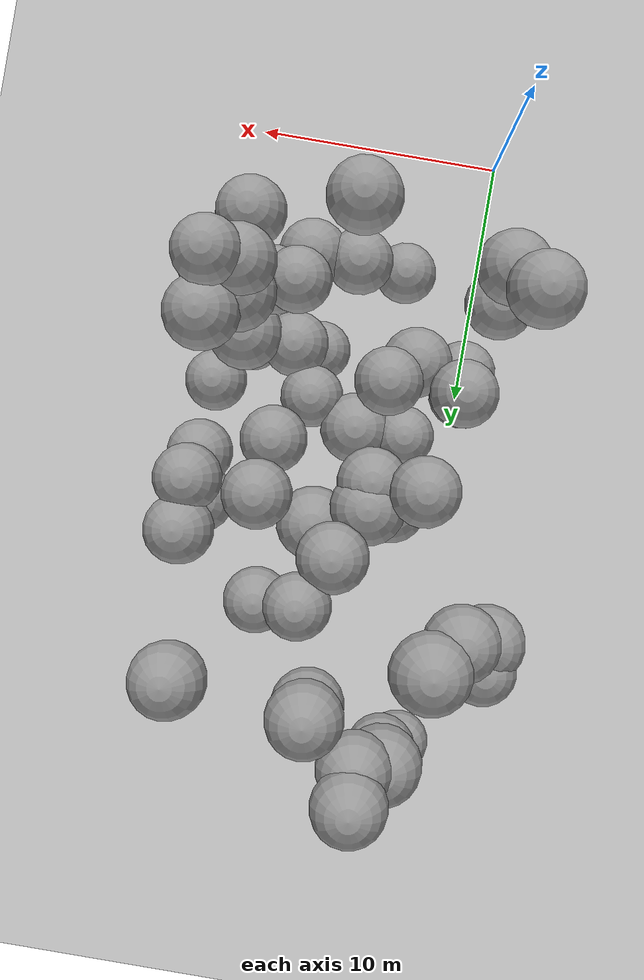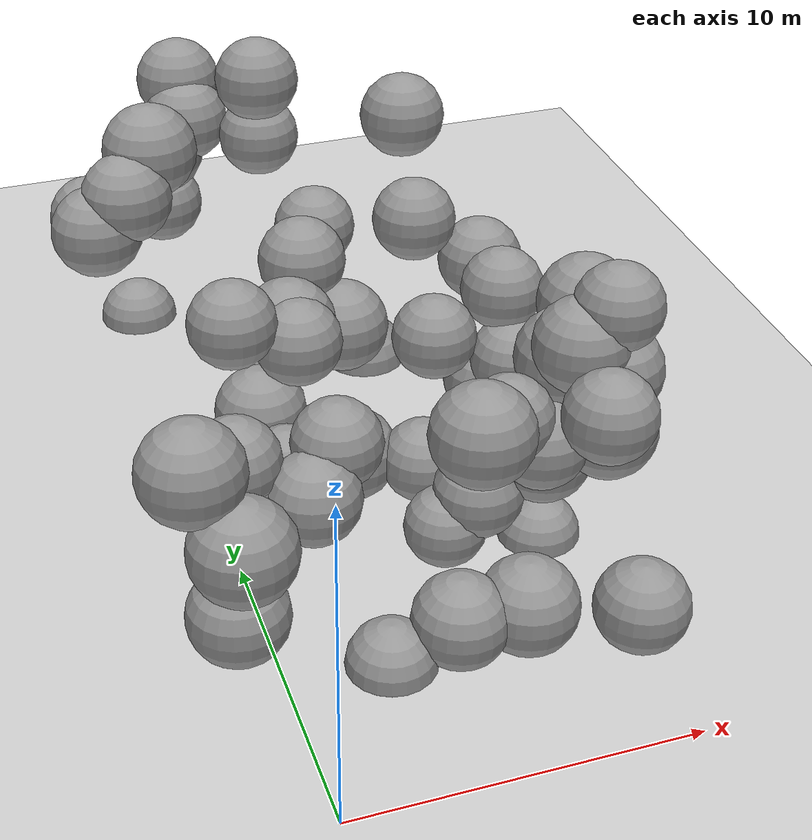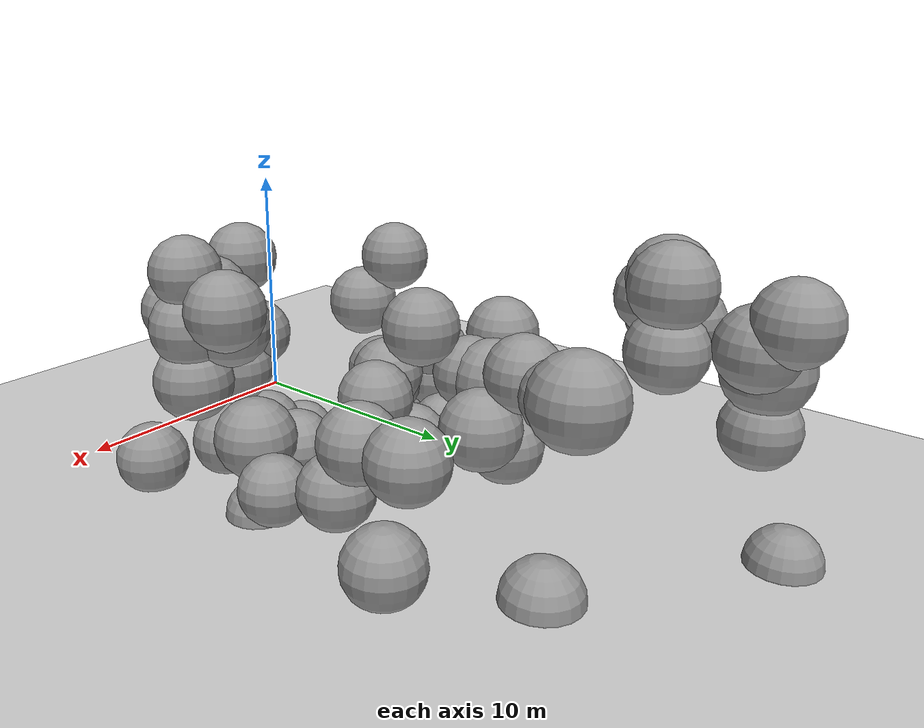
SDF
<sdf version="1.7">
 <world name="default">
  <model name="ground_plane">
   <static>1</static>
   <link name="link">
    <collision name="collision">
     <geometry><plane><normal>0 0 1</normal><size>100 100</size></plane></geometry>
     <surface>
      <contact><collide_bitmask>65535</collide_bitmask></contact>
      <friction><ode><mu>100</mu><mu2>50</mu2></ode></friction>
     </surface>
    </collision>
    <visual name="visual">
     <cast_shadows>0</cast_shadows>
     <geometry><plane><normal>0 0 1</normal><size>100 100</size></plane></geometry>
     <material>
      <script><uri>file://media/materials/scripts/gazebo.material</uri><name>Gazebo/Grey</name></script>
     </material>
    </visual>
   </link>
  </model>
  <model name="sphere_3">
   <static>1</static>
   <pose>10 11 2 0 0 0</pose>
   <link name="link">
    <inertial>
     <mass>868.9831357294986</mass>
     <inertia>
      <ixx>565.3965647869163</ixx>
      <iyy>565.3965647869163</iyy>
      <izz>565.3965647869163</izz>
      <ixy>0</ixy>
      <ixz>0</ixz>
      <iyz>0</iyz>
     </inertia>
    </inertial>
    <collision name="collision">
     <geometry><sphere><radius>1.275383849102163</radius></sphere></geometry>
    </collision>
    <visual name="visual">
     <geometry><sphere><radius>1.275383849102163</radius></sphere></geometry>
     <material>
      <script><uri>file://media/materials/scripts/gazebo.material</uri><name>Gazebo/Grey</name></script>
     </material>
    </visual>
   </link>
  </model>
  <model name="sphere_7">
   <static>1</static>
   <pose>3 5 0 0 0 0</pose>
   <link name="link">
    <inertial>
     <mass>956.1983310842588</mass>
     <inertia>
      <ixx>663.102839138089</ixx>
      <iyy>663.102839138089</iyy>
      <izz>663.102839138089</izz>
      <ixy>0</ixy>
      <ixz>0</ixz>
      <iyz>0</iyz>
     </inertia>
    </inertial>
    <collision name="collision">
     <geometry><sphere><radius>1.3166988533295256</radius></sphere></geometry>
    </collision>
    <visual name="visual">
     <geometry><sphere><radius>1.3166988533295256</radius></sphere></geometry>
     <material>
      <script><uri>file://media/materials/scripts/gazebo.material</uri><name>Gazebo/Grey</name></script>
     </material>
    </visual>
   </link>
  </model>
  <model name="sphere_9">
   <static>1</static>
   <pose>3 10 4 0 0 0</pose>
   <link name="link">
    <inertial>
     <mass>1079.731441712118</mass>
     <inertia>
      <ixx>811.9460351600522</ixx>
      <iyy>811.9460351600522</iyy>
      <izz>811.9460351600522</izz>
      <ixy>0</ixy>
      <ixz>0</ixz>
      <iyz>0</iyz>
     </inertia>
    </inertial>
    <collision name="collision">
     <geometry><sphere><radius>1.3711207804046117</radius></sphere></geometry>
    </collision>
    <visual name="visual">
     <geometry><sphere><radius>1.3711207804046117</radius></sphere></geometry>
     <material>
      <script><uri>file://media/materials/scripts/gazebo.material</uri><name>Gazebo/Grey</name></script>
     </material>
    </visual>
   </link>
  </model>
  <model name="sphere_11">
   <static>1</static>
   <pose>1 24 5 0 0 0</pose>
   <link name="link">
    <inertial>
     <mass>1003.4708876810511</mass>
     <inertia>
      <ixx>718.6358535089698</ixx>
      <iyy>718.6358535089698</iyy>
      <izz>718.6358535089698</izz>
      <ixy>0</ixy>
      <ixz>0</ixz>
      <iyz>0</iyz>
     </inertia>
    </inertial>
    <collision name="collision">
     <geometry><sphere><radius>1.3380491178231635</radius></sphere></geometry>
    </collision>
    <visual name="visual">
     <geometry><sphere><radius>1.3380491178231635</radius></sphere></geometry>
     <material>
      <script><uri>file://media/materials/scripts/gazebo.material</uri><name>Gazebo/Grey</name></script>
     </material>
    </visual>
   </link>
  </model>
  <model name="sphere_15">
   <static>1</static>
   <pose>7 13 5 0 0 0</pose>
   <link name="link">
    <inertial>
     <mass>923.8683063553028</mass>
     <inertia>
      <ixx>626.1586238649431</ixx>
      <iyy>626.1586238649431</iyy>
      <izz>626.1586238649431</izz>
      <ixy>0</ixy>
      <ixz>0</ixz>
      <iyz>0</iyz>
     </inertia>
    </inertial>
    <collision name="collision">
     <geometry><sphere><radius>1.3016887551544614</radius></sphere></geometry>
    </collision>
    <visual name="visual">
     <geometry><sphere><radius>1.3016887551544614</radius></sphere></geometry>
     <material>
      <script><uri>file://media/materials/scripts/gazebo.material</uri><name>Gazebo/Grey</name></script>
     </material>
    </visual>
   </link>
  </model>
  <model name="sphere_22">
   <static>1</static>
   <pose>5 19 6 0 0 0</pose>
   <link name="link">
    <inertial>
     <mass>912.9290711376584</mass>
     <inertia>
      <ixx>613.8505461930362</ixx>
      <iyy>613.8505461930362</iyy>
      <izz>613.8505461930362</izz>
      <ixy>0</ixy>
      <ixz>0</ixz>
      <iyz>0</iyz>
     </inertia>
    </inertial>
    <collision name="collision">
     <geometry><sphere><radius>1.2965307134144402</radius></sphere></geometry>
    </collision>
    <visual name="visual">
     <geometry><sphere><radius>1.2965307134144402</radius></sphere></geometry>
     <material>
      <script><uri>file://media/materials/scripts/gazebo.material</uri><name>Gazebo/Grey</name></script>
     </material>
    </visual>
   </link>
  </model>
  <model name="sphere_23">
   <static>1</static>
   <pose>-2 20 7 0 0 0</pose>
   <link name="link">
    <inertial>
     <mass>898.4752685543261</mass>
     <inertia>
      <ixx>597.7383638554867</ixx>
      <iyy>597.7383638554867</iyy>
      <izz>597.7383638554867</izz>
      <ixy>0</ixy>
      <ixz>0</ixz>
      <iyz>0</iyz>
     </inertia>
    </inertial>
    <collision name="collision">
     <geometry><sphere><radius>1.2896519108773912</radius></sphere></geometry>
    </collision>
    <visual name="visual">
     <geometry><sphere><radius>1.2896519108773912</radius></sphere></geometry>
     <material>
      <script><uri>file://media/materials/scripts/gazebo.material</uri><name>Gazebo/Grey</name></script>
     </material>
    </visual>
   </link>
  </model>
  <model name="sphere_27">
   <static>1</static>
   <pose>3 14 5 0 0 0</pose>
   <link name="link">
    <inertial>
     <mass>1061.8361056163462</mass>
     <inertia>
      <ixx>789.6416841092197</ixx>
      <iyy>789.6416841092197</iyy>
      <izz>789.6416841092197</izz>
      <ixy>0</ixy>
      <ixz>0</ixz>
      <iyz>0</iyz>
     </inertia>
    </inertial>
    <collision name="collision">
     <geometry><sphere><radius>1.3635036130666054</radius></sphere></geometry>
    </collision>
    <visual name="visual">
     <geometry><sphere><radius>1.3635036130666054</radius></sphere></geometry>
     <material>
      <script><uri>file://media/materials/scripts/gazebo.material</uri><name>Gazebo/Grey</name></script>
     </material>
    </visual>
   </link>
  </model>
  <model name="sphere_31">
   <static>1</static>
   <pose>10 14 3 0 0 0</pose>
   <link name="link">
    <inertial>
     <mass>974.4408386224361</mass>
     <inertia>
      <ixx>684.3212820842285</ixx>
      <iyy>684.3212820842285</iyy>
      <izz>684.3212820842285</izz>
      <ixy>0</ixy>
      <ixz>0</ixz>
      <iyz>0</iyz>
     </inertia>
    </inertial>
    <collision name="collision">
     <geometry><sphere><radius>1.3250195593667726</radius></sphere></geometry>
    </collision>
    <visual name="visual">
     <geometry><sphere><radius>1.3250195593667726</radius></sphere></geometry>
     <material>
      <script><uri>file://media/materials/scripts/gazebo.material</uri><name>Gazebo/Grey</name></script>
     </material>
    </visual>
   </link>
  </model>
  <model name="sphere_36">
   <static>1</static>
   <pose>4 22 10 0 0 0</pose>
   <link name="link">
    <inertial>
     <mass>1033.9862029616484</mass>
     <inertia>
      <ixx>755.4263999389774</ixx>
      <iyy>755.4263999389774</iyy>
      <izz>755.4263999389774</izz>
      <ixy>0</ixy>
      <ixz>0</ixz>
      <iyz>0</iyz>
     </inertia>
    </inertial>
    <collision name="collision">
     <geometry><sphere><radius>1.35147716305186</radius></sphere></geometry>
    </collision>
    <visual name="visual">
     <geometry><sphere><radius>1.35147716305186</radius></sphere></geometry>
     <material>
      <script><uri>file://media/materials/scripts/gazebo.material</uri><name>Gazebo/Grey</name></script>
     </material>
    </visual>
   </link>
  </model>
  <model name="sphere_48">
   <static>1</static>
   <pose>9 7 8 0 0 0</pose>
   <link name="link">
    <inertial>
     <mass>1090.026464649324</mass>
     <inertia>
      <ixx>824.8899052971848</ixx>
      <iyy>824.8899052971848</iyy>
      <izz>824.8899052971848</izz>
      <ixy>0</ixy>
      <ixz>0</ixz>
      <iyz>0</iyz>
     </inertia>
    </inertial>
    <collision name="collision">
     <geometry><sphere><radius>1.3754647903954558</radius></sphere></geometry>
    </collision>
    <visual name="visual">
     <geometry><sphere><radius>1.3754647903954558</radius></sphere></geometry>
     <material>
      <script><uri>file://media/materials/scripts/gazebo.material</uri><name>Gazebo/Grey</name></script>
     </material>
    </visual>
   </link>
  </model>
  <model name="sphere_52">
   <static>1</static>
   <pose>-1 5 5 0 0 0</pose>
   <link name="link">
    <inertial>
     <mass>1400.1566593632929</mass>
     <inertia>
      <ixx>1252.0700744228905</ixx>
      <iyy>1252.0700744228905</iyy>
      <izz>1252.0700744228905</izz>
      <ixy>0</ixy>
      <ixz>0</ixz>
      <iyz>0</iyz>
     </inertia>
    </inertial>
    <collision name="collision">
     <geometry><sphere><radius>1.49518870287036</radius></sphere></geometry>
    </collision>
    <visual name="visual">
     <geometry><sphere><radius>1.49518870287036</radius></sphere></geometry>
     <material>
      <script><uri>file://media/materials/scripts/gazebo.material</uri><name>Gazebo/Grey</name></script>
     </material>
    </visual>
   </link>
  </model>
  <model name="sphere_55">
   <static>1</static>
   <pose>10 15 5 0 0 0</pose>
   <link name="link">
    <inertial>
     <mass>999.6622390472045</mass>
     <inertia>
      <ixx>714.0956666187225</ixx>
      <iyy>714.0956666187225</iyy>
      <izz>714.0956666187225</izz>
      <ixy>0</ixy>
      <ixz>0</ixz>
      <iyz>0</iyz>
     </inertia>
    </inertial>
    <collision name="collision">
     <geometry><sphere><radius>1.3363541276031432</radius></sphere></geometry>
    </collision>
    <visual name="visual">
     <geometry><sphere><radius>1.3363541276031432</radius></sphere></geometry>
     <material>
      <script><uri>file://media/materials/scripts/gazebo.material</uri><name>Gazebo/Grey</name></script>
     </material>
    </visual>
   </link>
  </model>
  <model name="sphere_61">
   <static>1</static>
   <pose>9 8 7 0 0 0</pose>
   <link name="link">
    <inertial>
     <mass>1253.7664434985502</mass>
     <inertia>
      <ixx>1041.5864504863252</ixx>
      <iyy>1041.5864504863252</iyy>
      <izz>1041.5864504863252</izz>
      <ixy>0</ixy>
      <ixz>0</ixz>
      <iyz>0</iyz>
     </inertia>
    </inertial>
    <collision name="collision">
     <geometry><sphere><radius>1.4411505247789265</radius></sphere></geometry>
    </collision>
    <visual name="visual">
     <geometry><sphere><radius>1.4411505247789265</radius></sphere></geometry>
     <material>
      <script><uri>file://media/materials/scripts/gazebo.material</uri><name>Gazebo/Grey</name></script>
     </material>
    </visual>
   </link>
  </model>
  <model name="sphere_66">
   <static>1</static>
   <pose>0 25 0 0 0 0</pose>
   <link name="link">
    <inertial>
     <mass>1004.6235518711335</mass>
     <inertia>
      <ixx>720.012181331216</ixx>
      <iyy>720.012181331216</iyy>
      <izz>720.012181331216</izz>
      <ixy>0</ixy>
      <ixz>0</ixz>
      <iyz>0</iyz>
     </inertia>
    </inertial>
    <collision name="collision">
     <geometry><sphere><radius>1.3385612506463627</radius></sphere></geometry>
    </collision>
    <visual name="visual">
     <geometry><sphere><radius>1.3385612506463627</radius></sphere></geometry>
     <material>
      <script><uri>file://media/materials/scripts/gazebo.material</uri><name>Gazebo/Grey</name></script>
     </material>
    </visual>
   </link>
  </model>
  <model name="sphere_79">
   <static>1</static>
   <pose>2 24 8 0 0 0</pose>
   <link name="link">
    <inertial>
     <mass>1120.86506992665</mass>
     <inertia>
      <ixx>864.1513455822745</ixx>
      <iyy>864.1513455822745</iyy>
      <izz>864.1513455822745</izz>
      <ixy>0</ixy>
      <ixz>0</ixz>
      <iyz>0</iyz>
     </inertia>
    </inertial>
    <collision name="collision">
     <geometry><sphere><radius>1.3883157223792904</radius></sphere></geometry>
    </collision>
    <visual name="visual">
     <geometry><sphere><radius>1.3883157223792904</radius></sphere></geometry>
     <material>
      <script><uri>file://media/materials/scripts/gazebo.material</uri><name>Gazebo/Grey</name></script>
     </material>
    </visual>
   </link>
  </model>
  <model name="sphere_98">
   <static>1</static>
   <pose>5 5 1 0 0 0</pose>
   <link name="link">
    <inertial>
     <mass>1205.5672126514476</mass>
     <inertia>
      <ixx>975.708223490467</ixx>
      <iyy>975.708223490467</iyy>
      <izz>975.708223490467</izz>
      <ixy>0</ixy>
      <ixz>0</ixz>
      <iyz>0</iyz>
     </inertia>
    </inertial>
    <collision name="collision">
     <geometry><sphere><radius>1.422441036568479</radius></sphere></geometry>
    </collision>
    <visual name="visual">
     <geometry><sphere><radius>1.422441036568479</radius></sphere></geometry>
     <material>
      <script><uri>file://media/materials/scripts/gazebo.material</uri><name>Gazebo/Grey</name></script>
     </material>
    </visual>
   </link>
  </model>
  <model name="sphere_100">
   <static>1</static>
   <pose>10 7 5 0 0 0</pose>
   <link name="link">
    <inertial>
     <mass>1256.026952704467</mass>
     <inertia>
      <ixx>1044.7182545703663</ixx>
      <iyy>1044.7182545703663</iyy>
      <izz>1044.7182545703663</izz>
      <ixy>0</ixy>
      <ixz>0</ixz>
      <iyz>0</iyz>
     </inertia>
    </inertial>
    <collision name="collision">
     <geometry><sphere><radius>1.4420161240919158</radius></sphere></geometry>
    </collision>
    <visual name="visual">
     <geometry><sphere><radius>1.4420161240919158</radius></sphere></geometry>
     <material>
      <script><uri>file://media/materials/scripts/gazebo.material</uri><name>Gazebo/Grey</name></script>
     </material>
    </visual>
   </link>
  </model>
  <model name="sphere_104">
   <static>1</static>
   <pose>0 10 3 0 0 0</pose>
   <link name="link">
    <inertial>
     <mass>1038.575596995217</mass>
     <inertia>
      <ixx>761.0229870116839</ixx>
      <iyy>761.0229870116839</iyy>
      <izz>761.0229870116839</izz>
      <ixy>0</ixy>
      <ixz>0</ixz>
      <iyz>0</iyz>
     </inertia>
    </inertial>
    <collision name="collision">
     <geometry><sphere><radius>1.3534737426124328</radius></sphere></geometry>
    </collision>
    <visual name="visual">
     <geometry><sphere><radius>1.3534737426124328</radius></sphere></geometry>
     <material>
      <script><uri>file://media/materials/scripts/gazebo.material</uri><name>Gazebo/Grey</name></script>
     </material>
    </visual>
   </link>
  </model>
  <model name="sphere_109">
   <static>1</static>
   <pose>6 11 2 0 0 0</pose>
   <link name="link">
    <inertial>
     <mass>911.4426418462117</mass>
     <inertia>
      <ixx>612.1856667084536</ixx>
      <iyy>612.1856667084536</iyy>
      <izz>612.1856667084536</izz>
      <ixy>0</ixy>
      <ixz>0</ixz>
      <iyz>0</iyz>
     </inertia>
    </inertial>
    <collision name="collision">
     <geometry><sphere><radius>1.2958266615908984</radius></sphere></geometry>
    </collision>
    <visual name="visual">
     <geometry><sphere><radius>1.2958266615908984</radius></sphere></geometry>
     <material>
      <script><uri>file://media/materials/scripts/gazebo.material</uri><name>Gazebo/Grey</name></script>
     </material>
    </visual>
   </link>
  </model>
  <model name="sphere_119">
   <static>1</static>
   <pose>5 16 4 0 0 0</pose>
   <link name="link">
    <inertial>
     <mass>1317.519569659245</mass>
     <inertia>
      <ixx>1131.3475558301495</ixx>
      <iyy>1131.3475558301495</iyy>
      <izz>1131.3475558301495</izz>
      <ixy>0</ixy>
      <ixz>0</ixz>
      <iyz>0</iyz>
     </inertia>
    </inertial>
    <collision name="collision">
     <geometry><sphere><radius>1.4651749618407661</radius></sphere></geometry>
    </collision>
    <visual name="visual">
     <geometry><sphere><radius>1.4651749618407661</radius></sphere></geometry>
     <material>
      <script><uri>file://media/materials/scripts/gazebo.material</uri><name>Gazebo/Grey</name></script>
     </material>
    </visual>
   </link>
  </model>
  <model name="sphere_132">
   <static>1</static>
   <pose>4 12 2 0 0 0</pose>
   <link name="link">
    <inertial>
     <mass>1307.8214372345162</mass>
     <inertia>
      <ixx>1117.5020749934624</ixx>
      <iyy>1117.5020749934624</iyy>
      <izz>1117.5020749934624</izz>
      <ixy>0</ixy>
      <ixz>0</ixz>
      <iyz>0</iyz>
     </inertia>
    </inertial>
    <collision name="collision">
     <geometry><sphere><radius>1.4615711016708017</radius></sphere></geometry>
    </collision>
    <visual name="visual">
     <geometry><sphere><radius>1.4615711016708017</radius></sphere></geometry>
     <material>
      <script><uri>file://media/materials/scripts/gazebo.material</uri><name>Gazebo/Grey</name></script>
     </material>
    </visual>
   </link>
  </model>
  <model name="sphere_137">
   <static>1</static>
   <pose>10 7 9 0 0 0</pose>
   <link name="link">
    <inertial>
     <mass>848.7662236135884</mass>
     <inertia>
      <ixx>543.6437499617632</ixx>
      <iyy>543.6437499617632</iyy>
      <izz>543.6437499617632</izz>
      <ixy>0</ixy>
      <ixz>0</ixz>
      <iyz>0</iyz>
     </inertia>
    </inertial>
    <collision name="collision">
     <geometry><sphere><radius>1.2654155290516513</radius></sphere></geometry>
    </collision>
    <visual name="visual">
     <geometry><sphere><radius>1.2654155290516513</radius></sphere></geometry>
     <material>
      <script><uri>file://media/materials/scripts/gazebo.material</uri><name>Gazebo/Grey</name></script>
     </material>
    </visual>
   </link>
  </model>
  <model name="sphere_148">
   <static>1</static>
   <pose>3 15 5 0 0 0</pose>
   <link name="link">
    <inertial>
     <mass>1342.6296108974332</mass>
     <inertia>
      <ixx>1167.5118221395412</ixx>
      <iyy>1167.5118221395412</iyy>
      <izz>1167.5118221395412</izz>
      <ixy>0</ixy>
      <ixz>0</ixz>
      <iyz>0</iyz>
     </inertia>
    </inertial>
    <collision name="collision">
     <geometry><sphere><radius>1.4744244947759864</radius></sphere></geometry>
    </collision>
    <visual name="visual">
     <geometry><sphere><radius>1.4744244947759864</radius></sphere></geometry>
     <material>
      <script><uri>file://media/materials/scripts/gazebo.material</uri><name>Gazebo/Grey</name></script>
     </material>
    </visual>
   </link>
  </model>
  <model name="sphere_173">
   <static>1</static>
   <pose>0 20 9 0 0 0</pose>
   <link name="link">
    <inertial>
     <mass>1375.5026435039772</mass>
     <inertia>
      <ixx>1215.5419944643766</ixx>
      <iyy>1215.5419944643766</iyy>
      <izz>1215.5419944643766</izz>
      <ixy>0</ixy>
      <ixz>0</ixz>
      <iyz>0</iyz>
     </inertia>
    </inertial>
    <collision name="collision">
     <geometry><sphere><radius>1.486360903581729</radius></sphere></geometry>
    </collision>
    <visual name="visual">
     <geometry><sphere><radius>1.486360903581729</radius></sphere></geometry>
     <material>
      <script><uri>file://media/materials/scripts/gazebo.material</uri><name>Gazebo/Grey</name></script>
     </material>
    </visual>
   </link>
  </model>
  <model name="sphere_178">
   <static>1</static>
   <pose>9 9 3 0 0 0</pose>
   <link name="link">
    <inertial>
     <mass>1405.8536290254692</mass>
     <inertia>
      <ixx>1260.5723077163818</ixx>
      <iyy>1260.5723077163818</iyy>
      <izz>1260.5723077163818</izz>
      <ixy>0</ixy>
      <ixz>0</ixz>
      <iyz>0</iyz>
     </inertia>
    </inertial>
    <collision name="collision">
     <geometry><sphere><radius>1.497213837677362</radius></sphere></geometry>
    </collision>
    <visual name="visual">
     <geometry><sphere><radius>1.497213837677362</radius></sphere></geometry>
     <material>
      <script><uri>file://media/materials/scripts/gazebo.material</uri><name>Gazebo/Grey</name></script>
     </material>
    </visual>
   </link>
  </model>
  <model name="sphere_180">
   <static>1</static>
   <pose>7 7 6 0 0 0</pose>
   <link name="link">
    <inertial>
     <mass>866.0142977613713</mass>
     <inertia>
      <ixx>562.1808167697997</ixx>
      <iyy>562.1808167697997</iyy>
      <izz>562.1808167697997</izz>
      <ixy>0</ixy>
      <ixz>0</ixz>
      <iyz>0</iyz>
     </inertia>
    </inertial>
    <collision name="collision">
     <geometry><sphere><radius>1.2739297632602826</radius></sphere></geometry>
    </collision>
    <visual name="visual">
     <geometry><sphere><radius>1.2739297632602826</radius></sphere></geometry>
     <material>
      <script><uri>file://media/materials/scripts/gazebo.material</uri><name>Gazebo/Grey</name></script>
     </material>
    </visual>
   </link>
  </model>
  <model name="sphere_186">
   <static>1</static>
   <pose>1 24 7 0 0 0</pose>
   <link name="link">
    <inertial>
     <mass>1405.9323790197084</mass>
     <inertia>
      <ixx>1260.6899964921702</ixx>
      <iyy>1260.6899964921702</iyy>
      <izz>1260.6899964921702</izz>
      <ixy>0</ixy>
      <ixz>0</ixz>
      <iyz>0</iyz>
     </inertia>
    </inertial>
    <collision name="collision">
     <geometry><sphere><radius>1.4972417930247282</radius></sphere></geometry>
    </collision>
    <visual name="visual">
     <geometry><sphere><radius>1.4972417930247282</radius></sphere></geometry>
     <material>
      <script><uri>file://media/materials/scripts/gazebo.material</uri><name>Gazebo/Grey</name></script>
     </material>
    </visual>
   </link>
  </model>
  <model name="sphere_195">
   <static>1</static>
   <pose>2 12 2 0 0 0</pose>
   <link name="link">
    <inertial>
     <mass>825.8988450789748</mass>
     <inertia>
      <ixx>519.4523114596384</ixx>
      <iyy>519.4523114596384</iyy>
      <izz>519.4523114596384</izz>
      <ixy>0</ixy>
      <ixz>0</ixz>
      <iyz>0</iyz>
     </inertia>
    </inertial>
    <collision name="collision">
     <geometry><sphere><radius>1.2539476806649275</radius></sphere></geometry>
    </collision>
    <visual name="visual">
     <geometry><sphere><radius>1.2539476806649275</radius></sphere></geometry>
     <material>
      <script><uri>file://media/materials/scripts/gazebo.material</uri><name>Gazebo/Grey</name></script>
     </material>
    </visual>
   </link>
  </model>
  <model name="sphere_198">
   <static>1</static>
   <pose>10 7 7 0 0 0</pose>
   <link name="link">
    <inertial>
     <mass>1197.3916043797988</mass>
     <inertia>
      <ixx>964.7051559795009</ixx>
      <iyy>964.7051559795009</iyy>
      <izz>964.7051559795009</izz>
      <ixy>0</ixy>
      <ixz>0</ixz>
      <iyz>0</iyz>
     </inertia>
    </inertial>
    <collision name="collision">
     <geometry><sphere><radius>1.4192182912008109</radius></sphere></geometry>
    </collision>
    <visual name="visual">
     <geometry><sphere><radius>1.4192182912008109</radius></sphere></geometry>
     <material>
      <script><uri>file://media/materials/scripts/gazebo.material</uri><name>Gazebo/Grey</name></script>
     </material>
    </visual>
   </link>
  </model>
  <model name="sphere_199">
   <static>1</static>
   <pose>7 5 1 0 0 0</pose>
   <link name="link">
    <inertial>
     <mass>1351.3556246419573</mass>
     <inertia>
      <ixx>1180.185681078384</ixx>
      <iyy>1180.185681078384</iyy>
      <izz>1180.185681078384</izz>
      <ixy>0</ixy>
      <ixz>0</ixz>
      <iyz>0</iyz>
     </inertia>
    </inertial>
    <collision name="collision">
     <geometry><sphere><radius>1.4776117912941387</radius></sphere></geometry>
    </collision>
    <visual name="visual">
     <geometry><sphere><radius>1.4776117912941387</radius></sphere></geometry>
     <material>
      <script><uri>file://media/materials/scripts/gazebo.material</uri><name>Gazebo/Grey</name></script>
     </material>
    </visual>
   </link>
  </model>
  <model name="sphere_213">
   <static>1</static>
   <pose>9 5 7 0 0 0</pose>
   <link name="link">
    <inertial>
     <mass>951.8460163128973</mass>
     <inertia>
      <ixx>658.0800818310026</ixx>
      <iyy>658.0800818310026</iyy>
      <izz>658.0800818310026</izz>
      <ixy>0</ixy>
      <ixz>0</ixz>
      <iyz>0</iyz>
     </inertia>
    </inertial>
    <collision name="collision">
     <geometry><sphere><radius>1.3146980812790474</radius></sphere></geometry>
    </collision>
    <visual name="visual">
     <geometry><sphere><radius>1.3146980812790474</radius></sphere></geometry>
     <material>
      <script><uri>file://media/materials/scripts/gazebo.material</uri><name>Gazebo/Grey</name></script>
     </material>
    </visual>
   </link>
  </model>
  <model name="sphere_215">
   <static>1</static>
   <pose>10 9 8 0 0 0</pose>
   <link name="link">
    <inertial>
     <mass>1154.65325641477</mass>
     <inertia>
      <ixx>908.0021837218947</ixx>
      <iyy>908.0021837218947</iyy>
      <izz>908.0021837218947</izz>
      <ixy>0</ixy>
      <ixz>0</ixz>
      <iyz>0</iyz>
     </inertia>
    </inertial>
    <collision name="collision">
     <geometry><sphere><radius>1.4021279882812752</radius></sphere></geometry>
    </collision>
    <visual name="visual">
     <geometry><sphere><radius>1.4021279882812752</radius></sphere></geometry>
     <material>
      <script><uri>file://media/materials/scripts/gazebo.material</uri><name>Gazebo/Grey</name></script>
     </material>
    </visual>
   </link>
  </model>
  <model name="sphere_216">
   <static>1</static>
   <pose>2 25 9 0 0 0</pose>
   <link name="link">
    <inertial>
     <mass>1097.5633567646264</mass>
     <inertia>
      <ixx>834.4178459073711</ixx>
      <iyy>834.4178459073711</iyy>
      <izz>834.4178459073711</izz>
      <ixy>0</ixy>
      <ixz>0</ixz>
      <iyz>0</iyz>
     </inertia>
    </inertial>
    <collision name="collision">
     <geometry><sphere><radius>1.3786276884687285</radius></sphere></geometry>
    </collision>
    <visual name="visual">
     <geometry><sphere><radius>1.3786276884687285</radius></sphere></geometry>
     <material>
      <script><uri>file://media/materials/scripts/gazebo.material</uri><name>Gazebo/Grey</name></script>
     </material>
    </visual>
   </link>
  </model>
  <model name="sphere_221">
   <static>1</static>
   <pose>-2 6 7 0 0 0</pose>
   <link name="link">
    <inertial>
     <mass>1323.3413042762772</mass>
     <inertia>
      <ixx>1139.6916464481644</ixx>
      <iyy>1139.6916464481644</iyy>
      <izz>1139.6916464481644</izz>
      <ixy>0</ixy>
      <ixz>0</ixz>
      <iyz>0</iyz>
     </inertia>
    </inertial>
    <collision name="collision">
     <geometry><sphere><radius>1.4673298512477677</radius></sphere></geometry>
    </collision>
    <visual name="visual">
     <geometry><sphere><radius>1.4673298512477677</radius></sphere></geometry>
     <material>
      <script><uri>file://media/materials/scripts/gazebo.material</uri><name>Gazebo/Grey</name></script>
     </material>
    </visual>
   </link>
  </model>
  <model name="sphere_223">
   <static>1</static>
   <pose>9 22 8 0 0 0</pose>
   <link name="link">
    <inertial>
     <mass>1201.93772480697</mass>
     <inertia>
      <ixx>970.8173498987057</ixx>
      <iyy>970.8173498987057</iyy>
      <izz>970.8173498987057</izz>
      <ixy>0</ixy>
      <ixz>0</ixz>
      <iyz>0</iyz>
     </inertia>
    </inertial>
    <collision name="collision">
     <geometry><sphere><radius>1.4210121318269913</radius></sphere></geometry>
    </collision>
    <visual name="visual">
     <geometry><sphere><radius>1.4210121318269913</radius></sphere></geometry>
     <material>
      <script><uri>file://media/materials/scripts/gazebo.material</uri><name>Gazebo/Grey</name></script>
     </material>
    </visual>
   </link>
  </model>
  <model name="sphere_229">
   <static>1</static>
   <pose>-1 19 8 0 0 0</pose>
   <link name="link">
    <inertial>
     <mass>1189.8311447486653</mass>
     <inertia>
      <ixx>954.5744509263963</ixx>
      <iyy>954.5744509263963</iyy>
      <izz>954.5744509263963</izz>
      <ixy>0</ixy>
      <ixz>0</ixz>
      <iyz>0</iyz>
     </inertia>
    </inertial>
    <collision name="collision">
     <geometry><sphere><radius>1.4162249498270199</radius></sphere></geometry>
    </collision>
    <visual name="visual">
     <geometry><sphere><radius>1.4162249498270199</radius></sphere></geometry>
     <material>
      <script><uri>file://media/materials/scripts/gazebo.material</uri><name>Gazebo/Grey</name></script>
     </material>
    </visual>
   </link>
  </model>
  <model name="sphere_247">
   <static>1</static>
   <pose>2 15 2 0 0 0</pose>
   <link name="link">
    <inertial>
     <mass>1304.7966690298572</mass>
     <inertia>
      <ixx>1113.1977435709655</ixx>
      <iyy>1113.1977435709655</iyy>
      <izz>1113.1977435709655</izz>
      <ixy>0</ixy>
      <ixz>0</ixz>
      <iyz>0</iyz>
     </inertia>
    </inertial>
    <collision name="collision">
     <geometry><sphere><radius>1.4604434435336882</radius></sphere></geometry>
    </collision>
    <visual name="visual">
     <geometry><sphere><radius>1.4604434435336882</radius></sphere></geometry>
     <material>
      <script><uri>file://media/materials/scripts/gazebo.material</uri><name>Gazebo/Grey</name></script>
     </material>
    </visual>
   </link>
  </model>
  <model name="sphere_252">
   <static>1</static>
   <pose>7 20 0 0 0 0</pose>
   <link name="link">
    <inertial>
     <mass>1269.7216929776823</mass>
     <inertia>
      <ixx>1063.7718270933347</ixx>
      <iyy>1063.7718270933347</iyy>
      <izz>1063.7718270933347</izz>
      <ixy>0</ixy>
      <ixz>0</ixz>
      <iyz>0</iyz>
     </inertia>
    </inertial>
    <collision name="collision">
     <geometry><sphere><radius>1.447238064978983</radius></sphere></geometry>
    </collision>
    <visual name="visual">
     <geometry><sphere><radius>1.447238064978983</radius></sphere></geometry>
     <material>
      <script><uri>file://media/materials/scripts/gazebo.material</uri><name>Gazebo/Grey</name></script>
     </material>
    </visual>
   </link>
  </model>
  <model name="sphere_255">
   <static>1</static>
   <pose>1 14 6 0 0 0</pose>
   <link name="link">
    <inertial>
     <mass>1073.9672098692874</mass>
     <inertia>
      <ixx>804.73450174692</ixx>
      <iyy>804.73450174692</iyy>
      <izz>804.73450174692</izz>
      <ixy>0</ixy>
      <ixz>0</ixz>
      <iyz>0</iyz>
     </inertia>
    </inertial>
    <collision name="collision">
     <geometry><sphere><radius>1.3686764798956739</radius></sphere></geometry>
    </collision>
    <visual name="visual">
     <geometry><sphere><radius>1.3686764798956739</radius></sphere></geometry>
     <material>
      <script><uri>file://media/materials/scripts/gazebo.material</uri><name>Gazebo/Grey</name></script>
     </material>
    </visual>
   </link>
  </model>
  <model name="sphere_258">
   <static>1</static>
   <pose>0 10 4 0 0 0</pose>
   <link name="link">
    <inertial>
     <mass>1087.3008092001307</mass>
     <inertia>
      <ixx>821.4549870117487</ixx>
      <iyy>821.4549870117487</iyy>
      <izz>821.4549870117487</izz>
      <ixy>0</ixy>
      <ixz>0</ixz>
      <iyz>0</iyz>
     </inertia>
    </inertial>
    <collision name="collision">
     <geometry><sphere><radius>1.3743173649431748</radius></sphere></geometry>
    </collision>
    <visual name="visual">
     <geometry><sphere><radius>1.3743173649431748</radius></sphere></geometry>
     <material>
      <script><uri>file://media/materials/scripts/gazebo.material</uri><name>Gazebo/Grey</name></script>
     </material>
    </visual>
   </link>
  </model>
  <model name="sphere_279">
   <static>1</static>
   <pose>4 22 8 0 0 0</pose>
   <link name="link">
    <inertial>
     <mass>931.5577424053383</mass>
     <inertia>
      <ixx>634.8686538567877</ixx>
      <iyy>634.8686538567877</iyy>
      <izz>634.8686538567877</izz>
      <ixy>0</ixy>
      <ixz>0</ixz>
      <iyz>0</iyz>
     </inertia>
    </inertial>
    <collision name="collision">
     <geometry><sphere><radius>1.3052901381561892</radius></sphere></geometry>
    </collision>
    <visual name="visual">
     <geometry><sphere><radius>1.3052901381561892</radius></sphere></geometry>
     <material>
      <script><uri>file://media/materials/scripts/gazebo.material</uri><name>Gazebo/Grey</name></script>
     </material>
    </visual>
   </link>
  </model>
  <model name="sphere_292">
   <static>1</static>
   <pose>4 17 6 0 0 0</pose>
   <link name="link">
    <inertial>
     <mass>1110.25647044321</mass>
     <inertia>
      <ixx>850.5629083242919</ixx>
      <iyy>850.5629083242919</iyy>
      <izz>850.5629083242919</izz>
      <ixy>0</ixy>
      <ixz>0</ixz>
      <iyz>0</iyz>
     </inertia>
    </inertial>
    <collision name="collision">
     <geometry><sphere><radius>1.3839218551975434</radius></sphere></geometry>
    </collision>
    <visual name="visual">
     <geometry><sphere><radius>1.3839218551975434</radius></sphere></geometry>
     <material>
      <script><uri>file://media/materials/scripts/gazebo.material</uri><name>Gazebo/Grey</name></script>
     </material>
    </visual>
   </link>
  </model>
  <model name="sphere_293">
   <static>1</static>
   <pose>10 7 9 0 0 0</pose>
   <link name="link">
    <inertial>
     <mass>845.8147604976706</mass>
     <inertia>
      <ixx>540.4966645134293</ixx>
      <iyy>540.4966645134293</iyy>
      <izz>540.4966645134293</izz>
      <ixy>0</ixy>
      <ixz>0</ixz>
      <iyz>0</iyz>
     </inertia>
    </inertial>
    <collision name="collision">
     <geometry><sphere><radius>1.263947058445678</radius></sphere></geometry>
    </collision>
    <visual name="visual">
     <geometry><sphere><radius>1.263947058445678</radius></sphere></geometry>
     <material>
      <script><uri>file://media/materials/scripts/gazebo.material</uri><name>Gazebo/Grey</name></script>
     </material>
    </visual>
   </link>
  </model>
  <model name="sphere_295">
   <static>1</static>
   <pose>6 9 1 0 0 0</pose>
   <link name="link">
    <inertial>
     <mass>822.262354179457</mass>
     <inertia>
      <ixx>515.6459336900652</ixx>
      <iyy>515.6459336900652</iyy>
      <izz>515.6459336900652</izz>
      <ixy>0</ixy>
      <ixz>0</ixz>
      <iyz>0</iyz>
     </inertia>
    </inertial>
    <collision name="collision">
     <geometry><sphere><radius>1.2521045661810155</radius></sphere></geometry>
    </collision>
    <visual name="visual">
     <geometry><sphere><radius>1.2521045661810155</radius></sphere></geometry>
     <material>
      <script><uri>file://media/materials/scripts/gazebo.material</uri><name>Gazebo/Grey</name></script>
     </material>
    </visual>
   </link>
  </model>
  <model name="sphere_296">
   <static>1</static>
   <pose>10 4 1 0 0 0</pose>
   <link name="link">
    <inertial>
     <mass>1136.4454503921866</mass>
     <inertia>
      <ixx>884.2639278636126</ixx>
      <iyy>884.2639278636126</iyy>
      <izz>884.2639278636126</izz>
      <ixy>0</ixy>
      <ixz>0</ixz>
      <iyz>0</iyz>
     </inertia>
    </inertial>
    <collision name="collision">
     <geometry><sphere><radius>1.394718821514574</radius></sphere></geometry>
    </collision>
    <visual name="visual">
     <geometry><sphere><radius>1.394718821514574</radius></sphere></geometry>
     <material>
      <script><uri>file://media/materials/scripts/gazebo.material</uri><name>Gazebo/Grey</name></script>
     </material>
    </visual>
   </link>
  </model>
  <model name="sphere_298">
   <static>1</static>
   <pose>8 7 5 0 0 0</pose>
   <link name="link">
    <inertial>
     <mass>1021.2791262258994</mass>
     <inertia>
      <ixx>740.0169676306326</ixx>
      <iyy>740.0169676306326</iyy>
      <izz>740.0169676306326</izz>
      <ixy>0</ixy>
      <ixz>0</ixz>
      <iyz>0</iyz>
     </inertia>
    </inertial>
    <collision name="collision">
     <geometry><sphere><radius>1.345918043650199</radius></sphere></geometry>
    </collision>
    <visual name="visual">
     <geometry><sphere><radius>1.345918043650199</radius></sphere></geometry>
     <material>
      <script><uri>file://media/materials/scripts/gazebo.material</uri><name>Gazebo/Grey</name></script>
     </material>
    </visual>
   </link>
  </model>
  <model name="sphere_301">
   <static>1</static>
   <pose>10 16 1 0 0 0</pose>
   <link name="link">
    <inertial>
     <mass>1298.9577731885702</mass>
     <inertia>
      <ixx>1104.9076327904704</ixx>
      <iyy>1104.9076327904704</iyy>
      <izz>1104.9076327904704</izz>
      <ixy>0</ixy>
      <ixz>0</ixz>
      <iyz>0</iyz>
     </inertia>
    </inertial>
    <collision name="collision">
     <geometry><sphere><radius>1.458261716954568</radius></sphere></geometry>
    </collision>
    <visual name="visual">
     <geometry><sphere><radius>1.458261716954568</radius></sphere></geometry>
     <material>
      <script><uri>file://media/materials/scripts/gazebo.material</uri><name>Gazebo/Grey</name></script>
     </material>
    </visual>
   </link>
  </model>
  <model name="sphere_312">
   <static>1</static>
   <pose>7 9 2 0 0 0</pose>
   <link name="link">
    <inertial>
     <mass>1070.8367710894065</mass>
     <inertia>
      <ixx>800.8288523364405</ixx>
      <iyy>800.8288523364405</iyy>
      <izz>800.8288523364405</izz>
      <ixy>0</ixy>
      <ixz>0</ixz>
      <iyz>0</iyz>
     </inertia>
    </inertial>
    <collision name="collision">
     <geometry><sphere><radius>1.3673453630256547</radius></sphere></geometry>
    </collision>
    <visual name="visual">
     <geometry><sphere><radius>1.3673453630256547</radius></sphere></geometry>
     <material>
      <script><uri>file://media/materials/scripts/gazebo.material</uri><name>Gazebo/Grey</name></script>
     </material>
    </visual>
   </link>
  </model>
  <model name="sphere_314">
   <static>1</static>
   <pose>0 9 2 0 0 0</pose>
   <link name="link">
    <inertial>
     <mass>945.0672932660087</mass>
     <inertia>
      <ixx>650.2876021470349</ixx>
      <iyy>650.2876021470349</iyy>
      <izz>650.2876021470349</izz>
      <ixy>0</ixy>
      <ixz>0</ixz>
      <iyz>0</iyz>
     </inertia>
    </inertial>
    <collision name="collision">
     <geometry><sphere><radius>1.311569699115126</radius></sphere></geometry>
    </collision>
    <visual name="visual">
     <geometry><sphere><radius>1.311569699115126</radius></sphere></geometry>
     <material>
      <script><uri>file://media/materials/scripts/gazebo.material</uri><name>Gazebo/Grey</name></script>
     </material>
    </visual>
   </link>
  </model>
  <model name="sphere_320">
   <static>1</static>
   <pose>9 9 0 0 0 0</pose>
   <link name="link">
    <inertial>
     <mass>830.7707944999834</mass>
     <inertia>
      <ixx>524.5693997658524</ixx>
      <iyy>524.5693997658524</iyy>
      <izz>524.5693997658524</izz>
      <ixy>0</ixy>
      <ixz>0</ixz>
      <iyz>0</iyz>
     </inertia>
    </inertial>
    <collision name="collision">
     <geometry><sphere><radius>1.2564085132198344</radius></sphere></geometry>
    </collision>
    <visual name="visual">
     <geometry><sphere><radius>1.2564085132198344</radius></sphere></geometry>
     <material>
      <script><uri>file://media/materials/scripts/gazebo.material</uri><name>Gazebo/Grey</name></script>
     </material>
    </visual>
   </link>
  </model>
  <model name="sphere_327">
   <static>1</static>
   <pose>-2 19 7 0 0 0</pose>
   <link name="link">
    <inertial>
     <mass>1226.3665164205158</mass>
     <inertia>
      <ixx>1003.925284869397</ixx>
      <iyy>1003.925284869397</iyy>
      <izz>1003.925284869397</izz>
      <ixy>0</ixy>
      <ixz>0</ixz>
      <iyz>0</iyz>
     </inertia>
    </inertial>
    <collision name="collision">
     <geometry><sphere><radius>1.4305747599024972</radius></sphere></geometry>
    </collision>
    <visual name="visual">
     <geometry><sphere><radius>1.4305747599024972</radius></sphere></geometry>
     <material>
      <script><uri>file://media/materials/scripts/gazebo.material</uri><name>Gazebo/Grey</name></script>
     </material>
    </visual>
   </link>
  </model>
  <model name="sphere_346">
   <static>1</static>
   <pose>-1 6 2 0 0 0</pose>
   <link name="link">
    <inertial>
     <mass>1298.342387130557</mass>
     <inertia>
      <ixx>1104.0353470940165</ixx>
      <iyy>1104.0353470940165</iyy>
      <izz>1104.0353470940165</izz>
      <ixy>0</ixy>
      <ixz>0</ixz>
      <iyz>0</iyz>
     </inertia>
    </inertial>
    <collision name="collision">
     <geometry><sphere><radius>1.4580313949482253</radius></sphere></geometry>
    </collision>
    <visual name="visual">
     <geometry><sphere><radius>1.4580313949482253</radius></sphere></geometry>
     <material>
      <script><uri>file://media/materials/scripts/gazebo.material</uri><name>Gazebo/Grey</name></script>
     </material>
    </visual>
   </link>
  </model>
  <model name="sphere_356">
   <static>1</static>
   <pose>10 17 5 0 0 0</pose>
   <link name="link">
    <inertial>
     <mass>1073.293658946377</mass>
     <inertia>
      <ixx>803.8935134000288</ixx>
      <iyy>803.8935134000288</iyy>
      <izz>803.8935134000288</izz>
      <ixy>0</ixy>
      <ixz>0</ixz>
      <iyz>0</iyz>
     </inertia>
    </inertial>
    <collision name="collision">
     <geometry><sphere><radius>1.368390292978587</radius></sphere></geometry>
    </collision>
    <visual name="visual">
     <geometry><sphere><radius>1.368390292978587</radius></sphere></geometry>
     <material>
      <script><uri>file://media/materials/scripts/gazebo.material</uri><name>Gazebo/Grey</name></script>
     </material>
    </visual>
   </link>
  </model>
  <model name="sphere_376">
   <static>1</static>
   <pose>2 9 3 0 0 0</pose>
   <link name="link">
    <inertial>
     <mass>1210.3675218871567</mass>
     <inertia>
      <ixx>982.1919141790855</ixx>
      <iyy>982.1919141790855</iyy>
      <izz>982.1919141790855</izz>
      <ixy>0</ixy>
      <ixz>0</ixz>
      <iyz>0</iyz>
     </inertia>
    </inertial>
    <collision name="collision">
     <geometry><sphere><radius>1.4243264876705994</radius></sphere></geometry>
    </collision>
    <visual name="visual">
     <geometry><sphere><radius>1.4243264876705994</radius></sphere></geometry>
     <material>
      <script><uri>file://media/materials/scripts/gazebo.material</uri><name>Gazebo/Grey</name></script>
     </material>
    </visual>
   </link>
  </model>
  <model name="sphere_383">
   <static>1</static>
   <pose>5 4 8 0 0 0</pose>
   <link name="link">
    <inertial>
     <mass>1143.7114615451478</mass>
     <inertia>
      <ixx>893.7067553928989</ixx>
      <iyy>893.7067553928989</iyy>
      <izz>893.7067553928989</izz>
      <ixy>0</ixy>
      <ixz>0</ixz>
      <iyz>0</iyz>
     </inertia>
    </inertial>
    <collision name="collision">
     <geometry><sphere><radius>1.3976849474962496</radius></sphere></geometry>
    </collision>
    <visual name="visual">
     <geometry><sphere><radius>1.3976849474962496</radius></sphere></geometry>
     <material>
      <script><uri>file://media/materials/scripts/gazebo.material</uri><name>Gazebo/Grey</name></script>
     </material>
    </visual>
   </link>
  </model>
  <model name="sphere_391">
   <static>1</static>
   <pose>6 9 1 0 0 0</pose>
   <link name="link">
    <inertial>
     <mass>820.8623059654544</mass>
     <inertia>
      <ixx>514.1834658422669</ixx>
      <iyy>514.1834658422669</iyy>
      <izz>514.1834658422669</izz>
      <ixy>0</ixy>
      <ixz>0</ixz>
      <iyz>0</iyz>
     </inertia>
    </inertial>
    <collision name="collision">
     <geometry><sphere><radius>1.2513935187355505</radius></sphere></geometry>
    </collision>
    <visual name="visual">
     <geometry><sphere><radius>1.2513935187355505</radius></sphere></geometry>
     <material>
      <script><uri>file://media/materials/scripts/gazebo.material</uri><name>Gazebo/Grey</name></script>
     </material>
    </visual>
   </link>
  </model>
  <model name="sphere_397">
   <static>1</static>
   <pose>7 15 8 0 0 0</pose>
   <link name="link">
    <inertial>
     <mass>849.2075755604086</mass>
     <inertia>
      <ixx>544.114982611038</ixx>
      <iyy>544.114982611038</iyy>
      <izz>544.114982611038</izz>
      <ixy>0</ixy>
      <ixz>0</ixz>
      <iyz>0</iyz>
     </inertia>
    </inertial>
    <collision name="collision">
     <geometry><sphere><radius>1.2656348265117248</radius></sphere></geometry>
    </collision>
    <visual name="visual">
     <geometry><sphere><radius>1.2656348265117248</radius></sphere></geometry>
     <material>
      <script><uri>file://media/materials/scripts/gazebo.material</uri><name>Gazebo/Grey</name></script>
     </material>
    </visual>
   </link>
  </model>
 </world>
</sdf>
